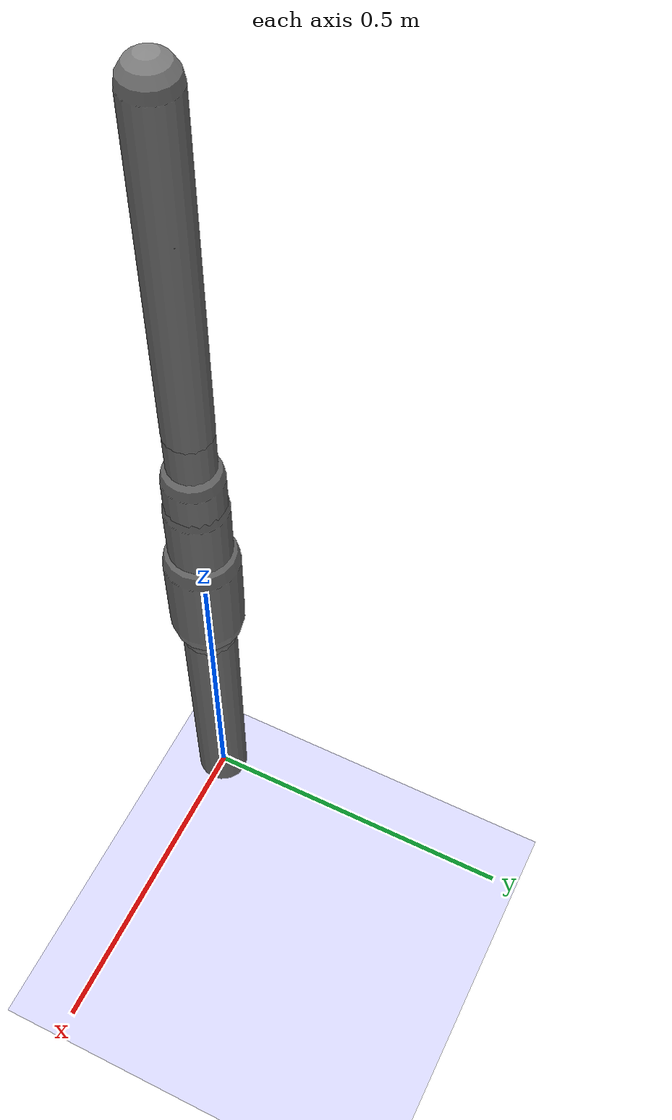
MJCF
<?xml version='1.0' encoding='UTF-8'?>
<mujoco model="robot_model">
  <worldbody>
    <light name="light" pos="0 -3 10" dir="0 0.5 -1" diffuse=".8 .8 .8" specular="0.1 0.1 0.1"/>
    <geom name="floor" type="plane" size="10.0 10.0 0.1" pos="0 0 0" rgba="0.8 0.8 1 1" contype="2" conaffinity="1"/>
    <body name="limb0" pos="0 0 0">
      <geom type="capsule" fromto="0 0 0 0 0 0.47805311459658134" size="0.04" density="1128.8080287950745" contype="1" conaffinity="2"/>
      <site type="sphere" size="0.01" name="limb0_site0" pos="0 0 0.3091302742315719"/>
      <site type="sphere" size="0.01" name="limb0_site1" pos="0 0 0.4501855606858348"/>
      <freejoint name="limb0_root"/>
      <body name="limb1" pos="0 0 0.3091302742315719">
        <geom type="capsule" fromto="0 0 0 0 0 0.2639757366326131" size="0.03303782304059255" density="616.6153958948047" contype="1" conaffinity="2"/>
        <site type="sphere" size="0.01" name="limb1_site0" pos="0 0 0.16469519644951955"/>
        <site type="sphere" size="0.01" name="limb1_site1" pos="0 0 0.10105994540977413"/>
        <site type="sphere" size="0.01" name="limb1_site2" pos="0 0 0.20614614605026646"/>
        <body name="limb2" pos="0 0 0.16469519644951955">
          <geom type="capsule" fromto="0 0 0 0 0 0.22251833059289267" size="0.04438075313162096" density="669.3792449409598" contype="1" conaffinity="2"/>
          <joint name="joint_limb1_limb2_0" type="hinge" axis="0 1 0" range="-66.9652511213398 66.9652511213398" damping="5.0"/>
        </body>
        <body name="limb3" pos="0 0 0.10105994540977413">
          <geom type="capsule" fromto="0 0 0 0 0 0.3449366956007403" size="0.04182995516077146" density="888.638751137447" contype="1" conaffinity="2"/>
          <site type="sphere" size="0.01" name="limb3_site0" pos="0 0 0.34476469369601037"/>
          <body name="limb4" pos="0 0 0.34476469369601037">
            <geom type="capsule" fromto="0 0 0 0 0 0.38689637571819735" size="0.03296585503229504" density="787.6117064878987" contype="1" conaffinity="2"/>
            <joint name="joint_limb3_limb4_0" type="hinge" axis="0 1 0" range="-97.60316524447805 97.60316524447805" damping="5.0"/>
          </body>
          <joint name="joint_limb1_limb3_0" type="hinge" axis="0 1 0" range="-81.36051586401729 81.36051586401729" damping="5.0"/>
        </body>
        <body name="limb5" pos="0 0 0.20614614605026646">
          <geom type="capsule" fromto="0 0 0 0 0 0.4886525017141072" size="0.02730849030649112" density="1118.1587480940386" contype="1" conaffinity="2"/>
          <site type="sphere" size="0.01" name="limb5_site0" pos="0 0 0.2463649766257729"/>
          <site type="sphere" size="0.01" name="limb5_site1" pos="0 0 0.32372424667221855"/>
          <body name="limb6" pos="0 0 0.2463649766257729">
            <geom type="capsule" fromto="0 0 0 0 0 0.1" size="0.023391176253817578" density="725.2931468643478" contype="1" conaffinity="2"/>
            <joint name="joint_limb5_limb6_0" type="hinge" axis="1 0 0" range="-42.15190616583611 42.15190616583611" damping="5.0"/>
          </body>
          <body name="limb7" pos="0 0 0.32372424667221855">
            <geom type="capsule" fromto="0 0 0 0 0 0.46069774576177897" size="0.0332704348730845" density="1124.59993360464" contype="1" conaffinity="2"/>
            <joint name="joint_limb5_limb7_0" type="hinge" axis="0 1 0" range="-82.9398742241018 82.9398742241018" damping="5.0"/>
          </body>
          <joint name="joint_limb1_limb5_0" type="hinge" axis="0 1 0" range="-87.28320610935387 87.28320610935387" damping="5.0"/>
        </body>
        <joint name="joint_limb0_limb1_0" type="hinge" axis="0 1 0" range="-81.38420949579312 81.38420949579312" damping="5.0"/>
      </body>
      <body name="limb8" pos="0 0 0.4501855606858348">
        <geom type="capsule" fromto="0 0 0 0 0 0.13252947652278277" size="0.05372058858359962" density="1100.1826029615775" contype="1" conaffinity="2"/>
        <joint name="joint_limb0_limb8_0" type="hinge" axis="0 1 0" range="-46.186401585393725 46.186401585393725" damping="5.0"/>
      </body>
    </body>
  </worldbody>
  <actuator>
    <position name="position_actuator_joint_limb0_limb1_0" joint="joint_limb0_limb1_0" gear="1.2568714754942514" inheritrange="1" kp="10.0"/>
    <position name="position_actuator_joint_limb1_limb2_0" joint="joint_limb1_limb2_0" gear="1.0628172104046523" inheritrange="1" kp="10.0"/>
    <position name="position_actuator_joint_limb1_limb3_0" joint="joint_limb1_limb3_0" gear="2.0" inheritrange="1" kp="10.0"/>
    <position name="position_actuator_joint_limb3_limb4_0" joint="joint_limb3_limb4_0" gear="1.7459471619076385" inheritrange="1" kp="10.0"/>
    <position name="position_actuator_joint_limb1_limb5_0" joint="joint_limb1_limb5_0" gear="1.1667342660042042" inheritrange="1" kp="10.0"/>
    <position name="position_actuator_joint_limb5_limb6_0" joint="joint_limb5_limb6_0" gear="1.5515760021784972" inheritrange="1" kp="10.0"/>
    <position name="position_actuator_joint_limb5_limb7_0" joint="joint_limb5_limb7_0" gear="1.8192611440742856" inheritrange="1" kp="10.0"/>
    <position name="position_actuator_joint_limb0_limb8_0" joint="joint_limb0_limb8_0" gear="0.5181521235082891" inheritrange="1" kp="10.0"/>
  </actuator>
</mujoco>
